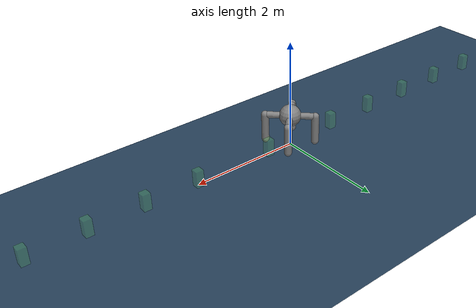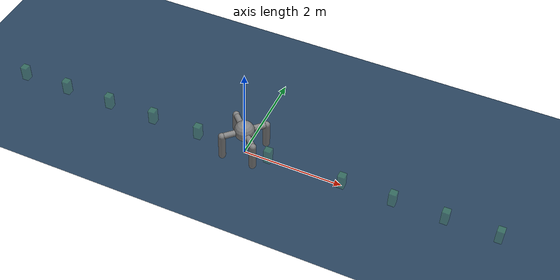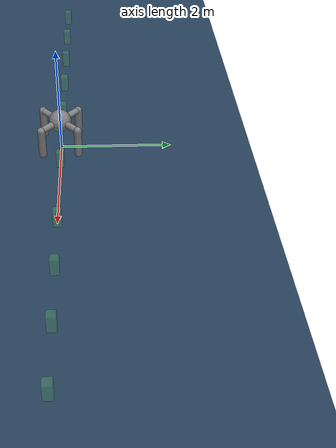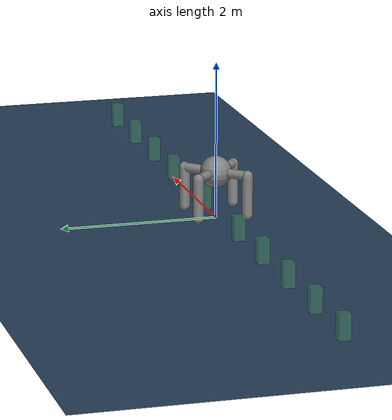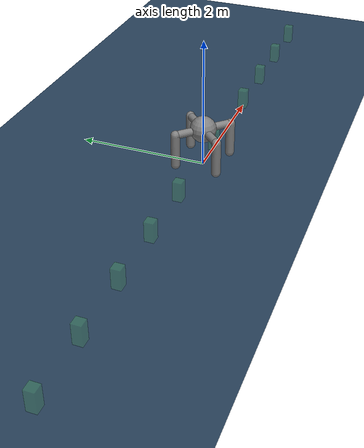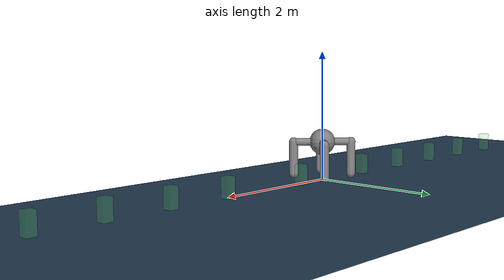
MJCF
<!--
    Model: Blobby
    Reference: Mujoco Humanoid.xml
-->
<mujoco model="Blobby">
    <option timestep="0.01" />

    <visual>
        <map force="0.1" zfar="30" />
        <rgba haze="0.15 0.25 0.35 1" />
        <global offwidth="2560" offheight="1440" elevation="-20" azimuth="0" />
    </visual>

    <statistic center="0 0 0.7" />

    <asset>
        <texture type="skybox" builtin="gradient" rgb1=".3 .5 .7" rgb2="0 0 0" width="32"
            height="512" />
        <texture name="body" type="cube" builtin="flat" mark="cross" width="127" height="1278"
            rgb1="0.8 0.6 0.4" rgb2="0.8 0.6 0.4" markrgb="1 1 1" random="0.01" />
        <material name="body" texture="body" texuniform="true" rgba="0.8 0.6 .4 1" />
        <texture name="grid" type="2d" builtin="checker" width="512" height="512" rgb1=".1 .2 .3"
            rgb2=".2 .3 .4" />
        <material name="grid" texture="grid" texrepeat="1 1" texuniform="true" reflectance=".2" />
    </asset>

    <default>
        <motor ctrlrange="-1 1" ctrllimited="true" />
        <!-- Blobby -->
        <default class="body">
            <!-- Geoms -->
            <default class = "shin">
                <geom type="capsule" size="0.07"/>
            </default>
            <!-- Joints -->
            <joint type="hinge" damping=".2" stiffness="1" armature=".01" limited="true"
                solimplimit="0 .99 .01" />
            <default class="joint_big">
                <joint damping="15" stiffness="10" />

                <default class="bthigh_xz">
                    <joint range="-30 30" />
                </default>
                <default class="bthigh_y">
                    <joint range="-40 40" />
                </default>
            </default>
            <default class="knee">
                <joint damping="15" stiffness="100" range="-1 1" />
            </default>
        </default>

        <!-- Food -->
        <default class="food">
            <geom type="capsule" size="0.11 0.08" />
            <site type="box" size="0.07 0.07 0.3" rgba="0.4 1 0.4 0.1"/>
        </default>

        <!-- Site -->
        <default class="site">
            <site type="box" size="0.05 0.05 0.03" rgba="0.6 0.7 0.8 0.1"/>
        </default>

        <!-- Motor -->
        <default class="blobby_motor">
            <motor gear="150" />
        </default>
    </default>

    <!-- World bodies -->
    <worldbody>
        <geom name="floor" size="0 0 .05" type="plane" material="grid" condim="3" />
        <light name="spotlight" mode="targetbodycom" target="blobby" diffuse=".8 .8 .8"
            specular="0.3 0.3 0.3" pos="0 -6 4" cutoff="30" />

        <!-- Blobby -->
        <body name="blobby" childclass="body" pos="0 0 0.6" euler="0 0 45">
            <light name="top" pos="0 0 2" mode="trackcom" />
            <camera name="topdown" pos="0 0 4" euler="0 0 -45" mode="trackcom"/>
            <camera name="back" pos="-3 0 1" xyaxes="0 -1 0 1 0 2" mode="trackcom" />
            <camera name="side" pos="0 -3 1" xyaxes="1 0 0 0 1 2" mode="trackcom" />

            <!-- Main body -->
            <freejoint name="root"/>
            <geom name="sphere" size="0.2" density="750"/>

            <!-- Legs/Thighs? -->
            <body name="thigh1" pos="0.2 0 0">
                <!-- Horizontal joint -->
                <joint name="thigh1_xz" axis="0 0 1" class="bthigh_xz" />
                <!-- Vertical joint -->
                <joint name="thigh1_y" axis="0 -1 0" class="bthigh_y" />

                <geom name="thigh1" type="capsule" fromto="0 0 0 0.25 0 0" size="0.06" />

                <!-- Shin + Knee -->
                <body name="shin1" pos="0.25 0 0">
                    <joint name="knee1" axis="0 -1 0" class="knee" />
                    <geom name="shin1" class="shin" fromto="0 0 0 0 0 -0.5"/>
                </body>
            </body>

            <body name="thigh2" pos="0 0.2 0">
                <joint name="thigh2_xz" axis="0 0 1" class="bthigh_xz" />
                <joint name="thigh2_y" axis="1 0 0" class="bthigh_y" />
                <geom name="thigh2" type="capsule" fromto="0 0 0 0 0.25 0" size="0.06" />
                <body name="shin2" pos="0 0.25 0">
                    <joint name="knee2" axis="1 0 0" class="knee" />
                    <geom name="shin2" class="shin" fromto="0 0 0 0 0 -0.5"/>
                </body>
            </body>

            <body name="thigh3" pos="-0.2 0 0">
                <joint name="thigh3_xz" axis="0 0 1" class="bthigh_xz" />
                <joint name="thigh3_y" axis="0 1 0" class="bthigh_y" />
                <geom name="thigh3" type="capsule" fromto="0 0 0 -0.25 0 0" size="0.06" />
                <body name="shin3" pos="-0.25 0 0">
                    <joint name="knee3" axis="0 1 0" class="knee" />
                    <geom name="shin3" class="shin" fromto="0 0 0 0 0 -0.5"/>
                </body>
            </body>

            <body name="thigh4" pos="0 -0.2 0">
                <joint name="thigh4_xz" axis="0 0 1" class="bthigh_xz" />
                <joint name="thigh4_y" axis="-1 0 0" class="bthigh_y" />
                <geom name="thigh4" type="capsule" fromto="0 0 0 0 -0.25 0" size="0.06" />
                <body name="shin4" pos="0 -0.25 0">
                    <joint name="knee4" axis="-1 0 0" class="knee" />
                    <geom name="shin4" class="shin" fromto="0 0 0 0 0 -0.5"/>
                </body>
            </body>
        </body>

        <!-- Other world bodies -->
        <body>
            <!-- Testing -->
            <!-- Foods (site) -->
            <site name="vFood1" class="food" pos="0.5 0 0" />
            <site name="vFood2" class="food" pos="-1 0 0" />
            <site name="vFood3" class="food" pos="2 0 0" />
            <site name="vFood4" class="food" pos="-2 0 0" />
            <site name="vFood5" class="food" pos="3 0 0" />
            <site name="vFood6" class="food" pos="-3 0 0" />
            <site name="vFood7" class="food" pos="4 0 0" />
            <site name="vFood8" class="food" pos="-4 0 0" />
            <site name="vFood9" class="food" pos="5 0 0" />
            <site name="vFood10" class="food" pos="-5 0 0" />
        </body>
    </worldbody>

    <!-- Sensors -->
    <sensor>
        <rangefinder name="vFood1" site="vFood1"/>
        <rangefinder name="vFood2" site="vFood2"/>
        <rangefinder name="vFood3" site="vFood3"/>
        <rangefinder name="vFood4" site="vFood4"/>
        <rangefinder name="vFood5" site="vFood5"/>
        <rangefinder name="vFood6" site="vFood6"/>
        <rangefinder name="vFood7" site="vFood7"/>
        <rangefinder name="vFood8" site="vFood8"/>
        <rangefinder name="vFood9" site="vFood9"/>
        <rangefinder name="vFood10" site="vFood10"/>

    </sensor>

    <!-- Controls -->
    <actuator>
        <!-- Thigh motors -->
        <motor name="thigh1_xz" class="blobby_motor" joint="thigh1_xz" />
        <motor name="thigh1_y"  class="blobby_motor" joint="thigh1_y" />
        <motor name="thigh2_xz" class="blobby_motor" joint="thigh2_xz" />
        <motor name="thigh2_y"  class="blobby_motor" joint="thigh2_y" />
        <motor name="thigh3_xz" class="blobby_motor" joint="thigh3_xz" />
        <motor name="thigh3_y"  class="blobby_motor" joint="thigh3_y" />
        <motor name="thigh4_xz" class="blobby_motor" joint="thigh4_xz" />
        <motor name="thigh4_y"  class="blobby_motor" joint="thigh4_y" />
    </actuator>
</mujoco>
